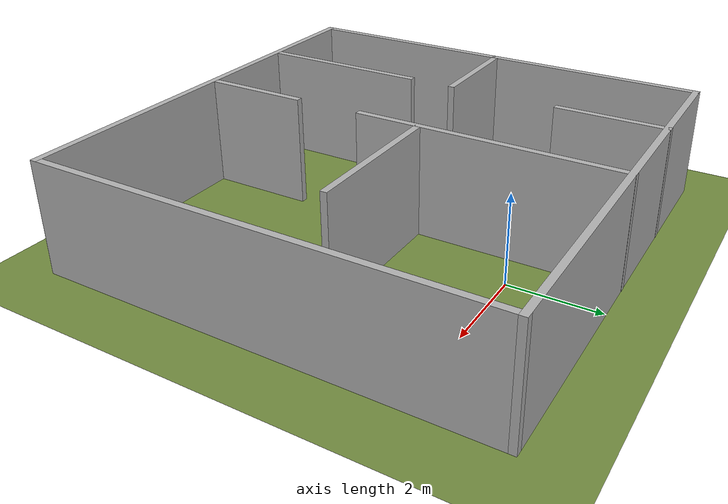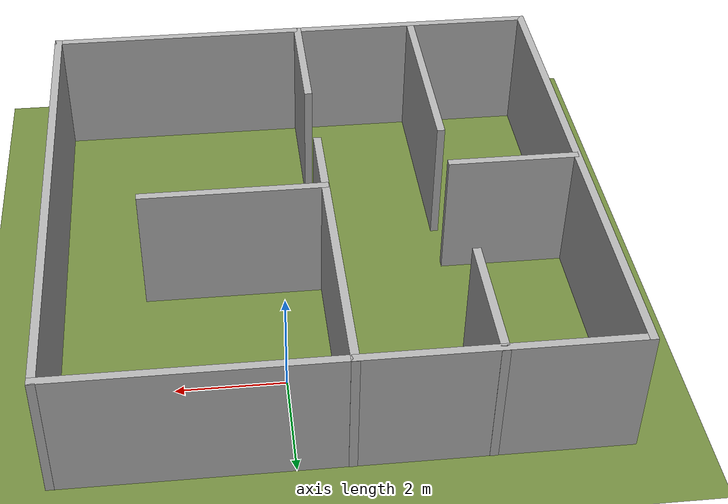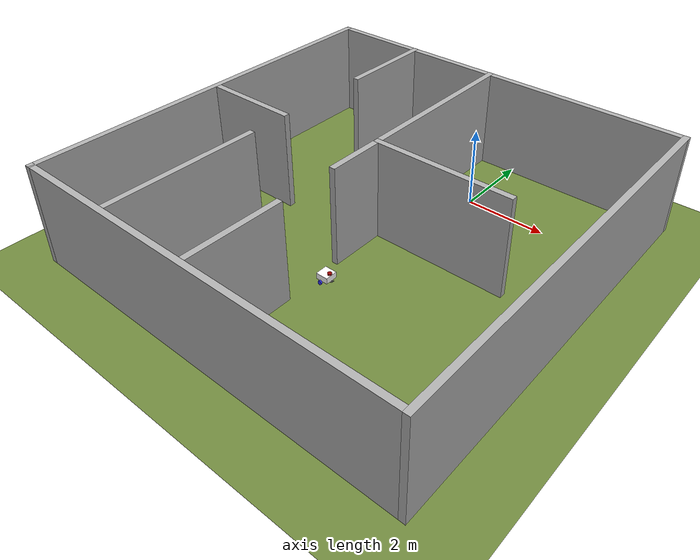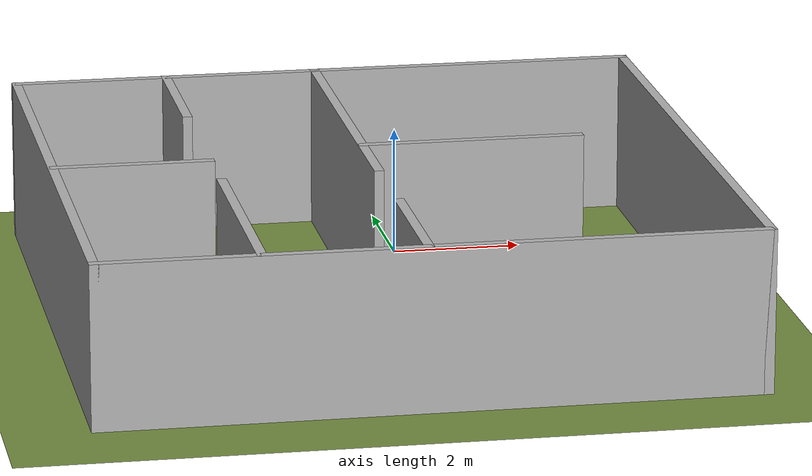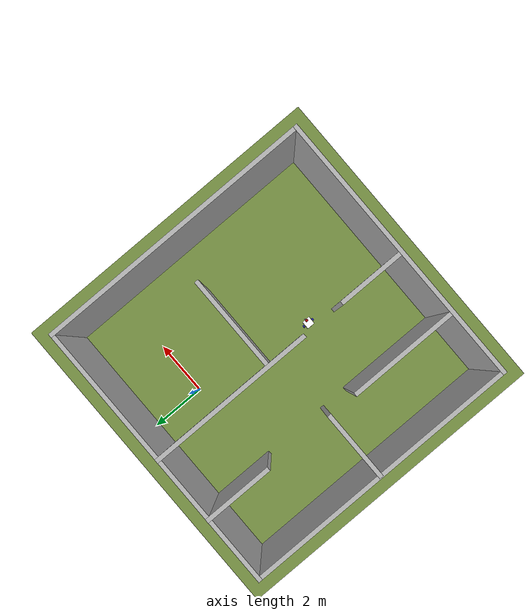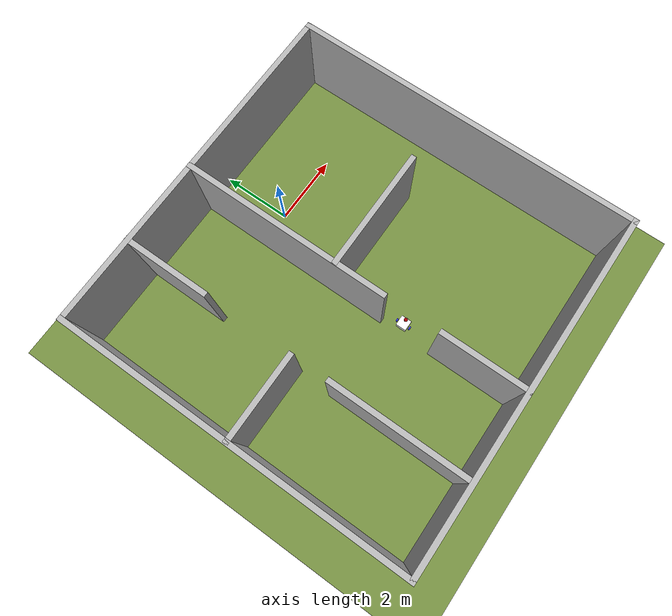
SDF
<sdf version="1.6">
 <world name="room_maze">
  <physics name="4ms" type="ignored">
   <max_step_size>0.004</max_step_size>
   <real_time_factor>1.0</real_time_factor>
  </physics>
  <plugin filename="ignition-gazebo-physics-system" name="gz::sim::systems::Physics"/>
  <plugin filename="ignition-gazebo-scene-broadcaster-system" name="gz::sim::systems::SceneBroadcaster"/>
  <plugin filename="ignition-gazebo-user-commands-system" name="gz::sim::systems::UserCommands"/>
  <plugin filename="ignition-gazebo-sensors-system" name="gz::sim::systems::Sensors">
   <render_engine>ogre2</render_engine>
  </plugin>
  <light type="directional" name="sun">
   <pose>0 0 500 0 0 0</pose>
   <diffuse>0.8 0.8 0.8 1</diffuse>
   <specular>0.2 0.2 0.2 1</specular>
   <attenuation>
    <range>1000</range>
    <constant>0.9</constant>
    <linear>0.01</linear>
    <quadratic>0.001</quadratic>
   </attenuation>
   <direction>-0.5 0.1 -0.9</direction>
  </light>
  <model name="ground_plane">
   <static>true</static>
   <link name="link">
    <collision name="collision">
     <geometry><plane><normal>0 0 1</normal><size>100 100</size></plane></geometry>
    </collision>
    <visual name="visual">
     <geometry><plane><normal>0 0 1</normal><size>100 100</size></plane></geometry>
     <material>
      <ambient>0.33 0.42 0.18 1</ambient>
      <diffuse>0.45 0.55 0.25 1</diffuse>
      <specular>0.1 0.1 0.1 1</specular>
     </material>
    </visual>
   </link>
  </model>
  <model name="room_with_walls_10x10">
   <pose>-0.702521 -2.96884 0 0 -0 0</pose>
   <link name="Wall_1">
    <collision name="Wall_1_Collision">
     <geometry><box><size>10 0.15 2.5</size></box></geometry>
     <pose>0 0 1.25 0 -0 0</pose>
    </collision>
    <visual name="Wall_1_Visual">
     <pose>0 0 1.25 0 -0 0</pose>
     <geometry><box><size>10 0.15 2.5</size></box></geometry>
     <material>
      <ambient>0.7 0.7 0.7 1</ambient>
      <diffuse>0.7 0.7 0.7 1</diffuse>
      <specular>0.2 0.2 0.2 1</specular>
     </material>
     <meta><layer>0</layer></meta>
    </visual>
    <pose>-0.119159 -4.92736 0 0 -0 0</pose>
   </link>
   <link name="Wall_11">
    <collision name="Wall_11_Collision">
     <geometry><box><size>2.5 0.15 2.5</size></box></geometry>
     <pose>0 0 1.25 0 -0 0</pose>
    </collision>
    <visual name="Wall_11_Visual">
     <pose>0 0 1.25 0 -0 0</pose>
     <geometry><box><size>2.5 0.15 2.5</size></box></geometry>
     <material>
      <ambient>0.7 0.7 0.7 1</ambient>
      <diffuse>0.7 0.7 0.7 1</diffuse>
      <specular>0.2 0.2 0.2 1</specular>
     </material>
     <meta><layer>0</layer></meta>
    </visual>
    <pose>-2.64666 3.75236 0 0 -0 -1.5708</pose>
   </link>
   <link name="Wall_16">
    <collision name="Wall_16_Collision">
     <geometry><box><size>2.5 0.15 2.5</size></box></geometry>
     <pose>0 0 1.25 0 -0 0</pose>
    </collision>
    <visual name="Wall_16_Visual">
     <pose>0 0 1.25 0 -0 0</pose>
     <geometry><box><size>2.5 0.15 2.5</size></box></geometry>
     <material>
      <ambient>0.7 0.7 0.7 1</ambient>
      <diffuse>0.7 0.7 0.7 1</diffuse>
      <specular>0.2 0.2 0.2 1</specular>
     </material>
     <meta><layer>0</layer></meta>
    </visual>
    <pose>-3.84066 0.028362 0 0 -0 0</pose>
   </link>
   <link name="Wall_18">
    <collision name="Wall_18_Collision">
     <geometry><box><size>4 0.15 2.5</size></box></geometry>
     <pose>0 0 1.25 0 -0 0</pose>
    </collision>
    <visual name="Wall_18_Visual">
     <pose>0 0 1.25 0 -0 0</pose>
     <geometry><box><size>4 0.15 2.5</size></box></geometry>
     <material>
      <ambient>0.7 0.7 0.7 1</ambient>
      <diffuse>0.7 0.7 0.7 1</diffuse>
      <specular>0.2 0.2 0.2 1</specular>
     </material>
     <meta><layer>0</layer></meta>
    </visual>
    <pose>-2.63516 -2.99164 0 0 -0 1.5708</pose>
   </link>
   <link name="Wall_2">
    <collision name="Wall_2_Collision">
     <geometry><box><size>10 0.15 2.5</size></box></geometry>
     <pose>0 0 1.25 0 -0 0</pose>
    </collision>
    <visual name="Wall_2_Visual">
     <pose>0 0 1.25 0 -0 0</pose>
     <geometry><box><size>10 0.15 2.5</size></box></geometry>
     <material>
      <ambient>0.7 0.7 0.7 1</ambient>
      <diffuse>0.7 0.7 0.7 1</diffuse>
      <specular>0.2 0.2 0.2 1</specular>
     </material>
     <meta><layer>0</layer></meta>
    </visual>
    <pose>4.80584 -0.002362 0 0 -0 1.5708</pose>
   </link>
   <link name="Wall_24">
    <collision name="Wall_24_Collision">
     <geometry><box><size>6 0.15 2.5</size></box></geometry>
     <pose>0 0 1.25 0 -0 0</pose>
    </collision>
    <visual name="Wall_24_Visual">
     <pose>0 0 1.25 0 -0 0</pose>
     <geometry><box><size>6 0.15 2.5</size></box></geometry>
     <material>
      <ambient>0.7 0.7 0.7 1</ambient>
      <diffuse>0.7 0.7 0.7 1</diffuse>
      <specular>0.2 0.2 0.2 1</specular>
     </material>
     <meta><layer>0</layer></meta>
    </visual>
    <pose>-0.243157 2.00236 0 0 -0 -1.5708</pose>
   </link>
   <link name="Wall_28">
    <collision name="Wall_28_Collision">
     <geometry><box><size>2.5 0.15 2.5</size></box></geometry>
     <pose>0 0 1.25 0 -0 0</pose>
    </collision>
    <visual name="Wall_28_Visual">
     <pose>0 0 1.25 0 -0 0</pose>
     <geometry><box><size>2.5 0.15 2.5</size></box></geometry>
     <material>
      <ambient>0.7 0.7 0.7 1</ambient>
      <diffuse>0.7 0.7 0.7 1</diffuse>
      <specular>0.2 0.2 0.2 1</specular>
     </material>
     <meta><layer>0</layer></meta>
    </visual>
    <pose>-0.220157 -3.74164 0 0 -0 1.5708</pose>
   </link>
   <link name="Wall_3">
    <collision name="Wall_3_Collision">
     <geometry><box><size>10 0.15 2.5</size></box></geometry>
     <pose>0 0 1.25 0 -0 0</pose>
    </collision>
    <visual name="Wall_3_Visual">
     <pose>0 0 1.25 0 -0 0</pose>
     <geometry><box><size>10 0.15 2.5</size></box></geometry>
     <material>
      <ambient>0.7 0.7 0.7 1</ambient>
      <diffuse>0.7 0.7 0.7 1</diffuse>
      <specular>0.2 0.2 0.2 1</specular>
     </material>
     <meta><layer>0</layer></meta>
    </visual>
    <pose>-0.119159 4.92264 0 0 -0 3.14159</pose>
   </link>
   <link name="Wall_36">
    <collision name="Wall_36_Collision">
     <geometry><box><size>3.5 0.15 2.5</size></box></geometry>
     <pose>0 0 1.25 0 -0 0</pose>
    </collision>
    <visual name="Wall_36_Visual">
     <pose>0 0 1.25 0 -0 0</pose>
     <geometry><box><size>3.5 0.15 2.5</size></box></geometry>
     <material>
      <ambient>0.7 0.7 0.7 1</ambient>
      <diffuse>0.7 0.7 0.7 1</diffuse>
      <specular>0.2 0.2 0.2 1</specular>
     </material>
     <meta><layer>0</layer></meta>
    </visual>
    <pose>1.44334 0.476862 0 0 -0 0</pose>
   </link>
   <link name="Wall_4">
    <collision name="Wall_4_Collision">
     <geometry><box><size>10 0.15 2.5</size></box></geometry>
     <pose>0 0 1.25 0 -0 0</pose>
    </collision>
    <visual name="Wall_4_Visual">
     <pose>0 0 1.25 0 -0 0</pose>
     <geometry><box><size>10 0.15 2.5</size></box></geometry>
     <material>
      <ambient>0.7 0.7 0.7 1</ambient>
      <diffuse>0.7 0.7 0.7 1</diffuse>
      <specular>0.2 0.2 0.2 1</specular>
     </material>
     <meta><layer>0</layer></meta>
    </visual>
    <pose>-5.04416 -0.002362 0 0 -0 -1.5708</pose>
   </link>
   <static>1</static>
  </model>
  <include>
   <name>nav_ugv</name>
   <uri>model://nav_ugv</uri>
   <pose>-0.7 -4.5 0.0 0 0 0</pose>
   <plugin filename="ignition-gazebo-diff-drive-system" name="gz::sim::systems::DiffDrive">
    <left_joint>left_wheel_joint</left_joint>
    <left_joint>rear_left_wheel_joint</left_joint>
    <right_joint>right_wheel_joint</right_joint>
    <right_joint>rear_right_wheel_joint</right_joint>
    <wheel_separation>0.49</wheel_separation>
    <wheel_radius>0.098</wheel_radius>
    <topic>cmd_vel</topic>
    <odom_topic>odometry</odom_topic>
    <frame_id>nav_ugv/wheel_odom</frame_id>
    <child_frame_id>nav_ugv/wheel_odom_base</child_frame_id>
    <odom_publish_frequency>30</odom_publish_frequency>
   </plugin>
   <plugin filename="ignition-gazebo-odometry-publisher-system" name="gz::sim::systems::OdometryPublisher">
    <dimensions>2</dimensions>
    <odom_frame>nav_ugv/odom</odom_frame>
    <robot_base_frame>nav_ugv/base_link</robot_base_frame>
    <odom_publish_frequency>30</odom_publish_frequency>
   </plugin>
  </include>
  <model name="overhead_overview_camera">
   <static>true</static>
   <pose>0 0 10.5 0 1.5707963 1.5707963</pose>
   <link name="link">
    <sensor name="room_overview_camera" type="camera">
     <always_on>true</always_on>
     <update_rate>15</update_rate>
     <visualize>true</visualize>
     <topic>/room_overhead/image</topic>
     <camera>
      <horizontal_fov>1.45</horizontal_fov>
      <image><width>640</width><height>480</height></image>
      <clip><near>0.1</near><far>100</far></clip>
     </camera>
    </sensor>
   </link>
  </model>
 </world>
</sdf>

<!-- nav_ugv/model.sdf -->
<sdf version="1.6">
  <model name="nav_ugv">
    <link name="base_link">
      <!-- Chassis center sits at wheel_radius + chassis_z/2 = 0.05 + 0.075
           = 0.125m above the ground - just tall enough that the box's
           bottom face clears the wheels' contact patch. -->
      <pose>0 0 0.125 0 0 0</pose>
      <inertial>
        <mass>1.5</mass>
        <inertia>
          <ixx>0.0138</ixx>
          <ixy>0</ixy>
          <ixz>0</ixz>
          <iyy>0.0138</iyy>
          <iyz>0</iyz>
          <izz>0.0225</izz>
        </inertia>
      </inertial>
      <visual name="chassis_visual">
        <geometry>
          <box>
            <size>0.3 0.3 0.15</size>
          </box>
        </geometry>
        <material>
          <ambient>1 1 1 1</ambient>
          <diffuse>1 1 1 1</diffuse>
          <specular>0.3 0.3 0.3 1</specular>
        </material>
      </visual>
      <collision name="chassis_collision">
        <geometry>
          <box>
            <size>0.3 0.3 0.15</size>
          </box>
        </geometry>
      </collision>

      <visual name="lidar_visual">
        <pose>0.1 0 0.095 0 0 0</pose>
        <geometry>
          <cylinder>
            <radius>0.05</radius>
            <length>0.04</length>
          </cylinder>
        </geometry>
        <material>
          <ambient>0.6 0 0 1</ambient>
          <diffuse>0.6 0 0 1</diffuse>
        </material>
      </visual>
      <sensor name="lidar" type="gpu_lidar">
        <pose>0.1 0 0.095 0 0 0</pose>
        <topic>nav_ugv/scan</topic>
        <update_rate>10</update_rate>
        <always_on>true</always_on>
        <visualize>false</visualize>
        <lidar>
          <scan>
            <horizontal>
              <samples>360</samples>
              <resolution>1</resolution>
              <min_angle>-3.14159</min_angle>
              <max_angle>3.14159</max_angle>
            </horizontal>
            <vertical>
              <samples>1</samples>
              <resolution>1</resolution>
              <min_angle>0</min_angle>
              <max_angle>0</max_angle>
            </vertical>
          </scan>
          <range>
            <min>0.3</min>
            <max>12.0</max>
            <resolution>0.01</resolution>
          </range>
        </lidar>
      </sensor>
    </link>

    <link name="left_wheel">
      <pose>0 0.2 0.05 -1.5708 0 0</pose>
      <inertial>
        <mass>0.2</mass>
        <inertia>
          <ixx>0.00013</ixx>
          <ixy>0</ixy>
          <ixz>0</ixz>
          <iyy>0.00013</iyy>
          <iyz>0</iyz>
          <izz>0.00025</izz>
        </inertia>
      </inertial>
      <visual name="visual">
        <geometry>
          <cylinder>
            <radius>0.05</radius>
            <length>0.04</length>
          </cylinder>
        </geometry>
        <material>
          <ambient>0.2 0.2 1 1</ambient>
          <diffuse>0.2 0.2 1 1</diffuse>
        </material>
      </visual>
      <collision name="collision">
        <geometry>
          <sphere>
            <radius>0.05</radius>
          </sphere>
        </geometry>
      </collision>
    </link>

    <link name="right_wheel">
      <pose>0 -0.2 0.05 -1.5708 0 0</pose>
      <inertial>
        <mass>0.2</mass>
        <inertia>
          <ixx>0.00013</ixx>
          <ixy>0</ixy>
          <ixz>0</ixz>
          <iyy>0.00013</iyy>
          <iyz>0</iyz>
          <izz>0.00025</izz>
        </inertia>
      </inertial>
      <visual name="visual">
        <geometry>
          <cylinder>
            <radius>0.05</radius>
            <length>0.04</length>
          </cylinder>
        </geometry>
        <material>
          <ambient>0.2 0.2 1 1</ambient>
          <diffuse>0.2 0.2 1 1</diffuse>
        </material>
      </visual>
      <collision name="collision">
        <geometry>
          <sphere>
            <radius>0.05</radius>
          </sphere>
        </geometry>
      </collision>
    </link>

    <link name="caster_wheel">
      <pose>-0.13 0 0.03 0 0 0</pose>
      <inertial>
        <mass>0.1</mass>
        <inertia>
          <ixx>0.000036</ixx>
          <ixy>0</ixy>
          <ixz>0</ixz>
          <iyy>0.000036</iyy>
          <iyz>0</iyz>
          <izz>0.000036</izz>
        </inertia>
      </inertial>
      <visual name="visual">
        <geometry>
          <sphere>
            <radius>0.03</radius>
          </sphere>
        </geometry>
        <material>
          <ambient>0.1 0.1 0.1 1</ambient>
          <diffuse>0.1 0.1 0.1 1</diffuse>
        </material>
      </visual>
      <collision name="collision">
        <geometry>
          <sphere>
            <radius>0.03</radius>
          </sphere>
        </geometry>
        <surface>
          <friction>
            <ode>
              <mu>0.001</mu>
              <mu2>0.001</mu2>
            </ode>
          </friction>
        </surface>
      </collision>
    </link>

    <link name="front_caster_wheel">
      <pose>0.13 0 0.03 0 0 0</pose>
      <inertial>
        <mass>0.1</mass>
        <inertia>
          <ixx>0.000036</ixx>
          <ixy>0</ixy>
          <ixz>0</ixz>
          <iyy>0.000036</iyy>
          <iyz>0</iyz>
          <izz>0.000036</izz>
        </inertia>
      </inertial>
      <visual name="visual">
        <geometry>
          <sphere>
            <radius>0.03</radius>
          </sphere>
        </geometry>
        <material>
          <ambient>0.1 0.1 0.1 1</ambient>
          <diffuse>0.1 0.1 0.1 1</diffuse>
        </material>
      </visual>
      <collision name="collision">
        <geometry>
          <sphere>
            <radius>0.03</radius>
          </sphere>
        </geometry>
        <surface>
          <friction>
            <ode>
              <mu>0.001</mu>
              <mu2>0.001</mu2>
            </ode>
          </friction>
        </surface>
      </collision>
    </link>

    <joint name="left_wheel_joint" type="revolute">
      <parent>base_link</parent>
      <child>left_wheel</child>
      <axis>
        <xyz>0 0 1</xyz>
        <limit>
          <lower>-1.79769e+308</lower>
          <upper>1.79769e+308</upper>
        </limit>
      </axis>
    </joint>

    <joint name="right_wheel_joint" type="revolute">
      <parent>base_link</parent>
      <child>right_wheel</child>
      <axis>
        <xyz>0 0 1</xyz>
        <limit>
          <lower>-1.79769e+308</lower>
          <upper>1.79769e+308</upper>
        </limit>
      </axis>
    </joint>

    <joint name="front_caster_wheel_joint" type="ball">
      <parent>base_link</parent>
      <child>front_caster_wheel</child>
    </joint>

    <joint name="caster_wheel_joint" type="ball">
      <parent>base_link</parent>
      <child>caster_wheel</child>
    </joint>

    <link name="front_camera_link">
      <pose>0.18 0 0.05 0 0.6 0</pose>
      <visual name="front_camera_visual">
        <geometry>
          <box>
            <size>0.03 0.05 0.03</size>
          </box>
        </geometry>
        <material>
          <ambient>0.05 0.05 0.05 1</ambient>
          <diffuse>0.05 0.05 0.05 1</diffuse>
        </material>
      </visual>
      <sensor name="front_camera" type="rgbd_camera">
        <pose>0 0 0 0 0 0</pose>
        <always_on>true</always_on>
        <update_rate>10</update_rate>
        <visualize>true</visualize>
        <topic>nav_ugv/front_camera</topic>
        <camera>
          <horizontal_fov>1.047</horizontal_fov>
          <image>
            <width>320</width>
            <height>240</height>
          </image>
          <clip>
            <near>0.1</near>
            <far>8.0</far>
          </clip>
        </camera>
      </sensor>
    </link>
    <joint name="front_camera_joint" type="fixed">
      <parent>base_link</parent>
      <child>front_camera_link</child>
    </joint>

    <link name="video_camera_link">
      <pose>0.1 0 0.22 0 0.15 0</pose>
      <inertial>
        <mass>0.02</mass>
        <inertia>
          <ixx>0.000005</ixx>
          <iyy>0.000005</iyy>
          <izz>0.000005</izz>
          <ixy>0</ixy>
          <ixz>0</ixz>
          <iyz>0</iyz>
        </inertia>
      </inertial>
      <visual name="video_camera_visual">
        <geometry>
          <box>
            <size>0.03 0.05 0.03</size>
          </box>
        </geometry>
        <material>
          <ambient>0.05 0.05 0.05 1</ambient>
          <diffuse>0.05 0.05 0.05 1</diffuse>
        </material>
      </visual>
      <sensor name="video_camera" type="camera">
        <pose>0 0 0 0 0 0</pose>
        <always_on>true</always_on>
        <update_rate>10</update_rate>
        <visualize>true</visualize>
        <topic>nav_ugv/video_camera</topic>
        <camera>
          <horizontal_fov>1.3</horizontal_fov>
          <image>
            <width>320</width>
            <height>240</height>
          </image>
          <clip>
            <near>0.1</near>
            <far>15.0</far>
          </clip>
        </camera>
      </sensor>
    </link>
    <joint name="video_camera_joint" type="fixed">
      <parent>base_link</parent>
      <child>video_camera_link</child>
    </joint>
  </model>
</sdf>
